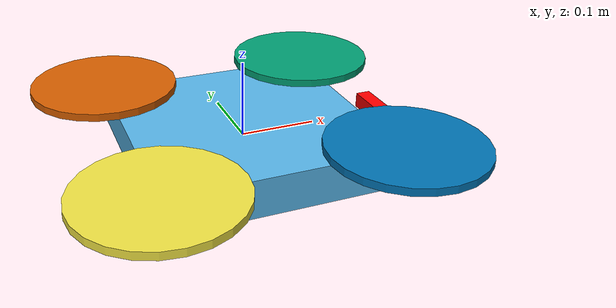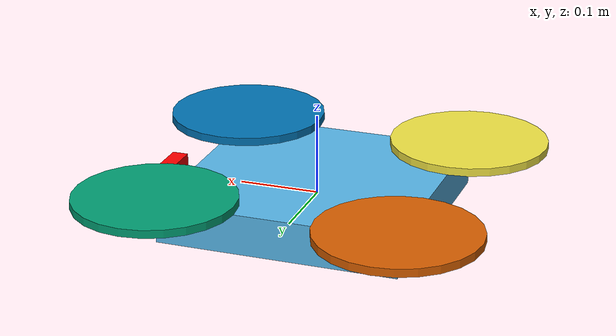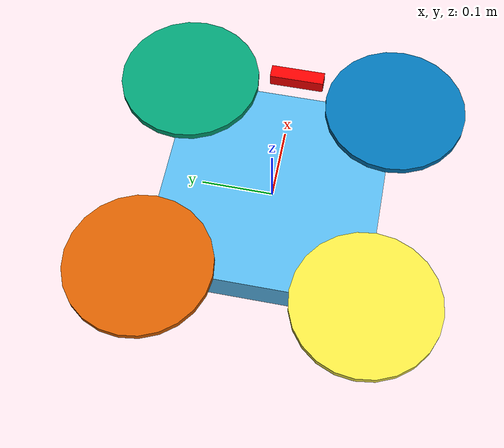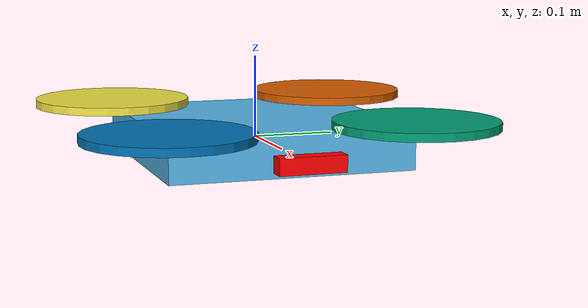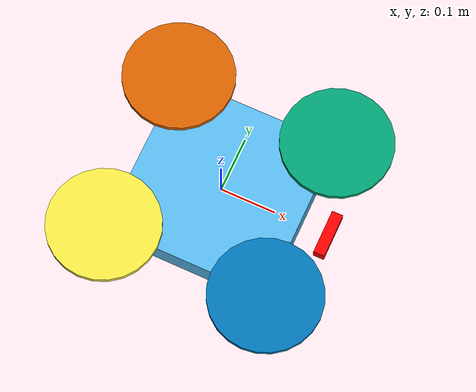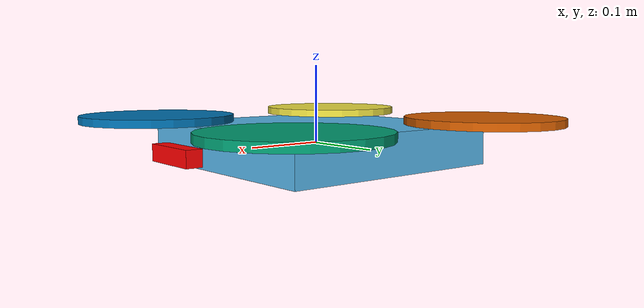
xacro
<?xml version="1.0"?>
<robot xmlns:xacro="http://www.ros.org/wiki/xacro" name="drone">

    <xacro:property name="robot_namespace" value="drone" />

    <xacro:include filename="components/shapes.xacro" />
    <xacro:include filename="components/rotor.xacro" />

    <link name="base_footprint" />
    <joint name="base_joint" type="fixed">
        <parent link="base_footprint" />
        <child link="base_link" />
        <origin xyz="0 0 0" rpy="0 0 0" />
    </joint>

    <link name="base_link">
        <visual>
            <geometry>
                <box size="0.3 0.3 0.05" />
            </geometry>
        </visual>
        <collision>
            <geometry>
                <box size="0.3 0.3 0.05" />
            </geometry>
        </collision>
        <xacro:inertial_box mass="1.0" x="0.3" y="0.3" z="0.05">
            <origin xyz="0 0 0" rpy="0 0 0" />
        </xacro:inertial_box>
    </link>

    <xacro:rotor suffix="0" x="0.15" y="0.15" ccw="-1" />  <!-- Front Left -->
    <xacro:rotor suffix="1" x="-0.15" y="-0.15" ccw="-1" />  <!-- Rear Right -->
    <xacro:rotor suffix="2" x="0.15" y="-0.15" ccw="1" /> <!-- Front Right -->
    <xacro:rotor suffix="3" x="-0.15" y="0.15" ccw="1" /> <!-- Rear Left -->

    <xacro:include filename="sensors.xacro" />

    <gazebo>
        <plugin filename="gz-sim-joint-state-publisher-system"
            name="gz::sim::systems::JointStatePublisher">
            <topic>/${robot_namespace}/joint_states</topic>
        </plugin>

        <plugin
            filename="gz-sim-scene-broadcaster-system"
            name="gz::sim::systems::SceneBroadcaster">
        </plugin>

        <!-- odometry -->
        <plugin
            filename="gz-sim-odometry-publisher-system"
            name="gz::sim::systems::OdometryPublisher">
            <dimensions>3</dimensions>
            <odom_publish_frequency>50</odom_publish_frequency>
            <odom_topic>/${robot_namespace}/odometry</odom_topic>
            <tf_topic>/${robot_namespace}/tf</tf_topic>
            <gaussian_noise>0.01</gaussian_noise>
            <odom_frame>${robot_namespace}/odom</odom_frame>
            <robot_base_frame>${robot_namespace}/base_footprint</robot_base_frame>
        </plugin>

    </gazebo>

</robot>

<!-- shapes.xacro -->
<robot xmlns:xacro="http://ros.org">

    <!-- Αδράνεια για Σφαίρα -->
    <xacro:macro name="inertial_sphere" params="mass radius *origin">
        <inertial>
            <xacro:insert_block name="origin"/>
            <mass value="${mass}" />
            <inertia ixx="${(2/5) * mass * (radius*radius)}" ixy="0.0" ixz="0.0"
                     iyy="${(2/5) * mass * (radius*radius)}" iyz="0.0"
                     izz="${(2/5) * mass * (radius*radius)}" />
        </inertial>
    </xacro:macro>

    <!-- Αδράνεια για Κύλινδρο -->
    <xacro:macro name="inertial_cylinder" params="mass length radius *origin">
        <inertial>
            <xacro:insert_block name="origin"/>
            <mass value="${mass}" />
            <inertia ixx="${(1/12) * mass * (3*radius*radius + length*length)}" ixy="0.0" ixz="0.0"
                     iyy="${(1/12) * mass * (3*radius*radius + length*length)}" iyz="0.0"
                     izz="${(1/2) * mass * (radius*radius)}" />
        </inertial>
    </xacro:macro>

    <!-- Αδράνεια για Κουτί (Box) -->
    <xacro:macro name="inertial_box" params="mass x y z *origin">
        <inertial>
            <xacro:insert_block name="origin"/>
            <mass value="${mass}" />
            <inertia ixx="${(1/12) * mass * (y*y + z*z)}" ixy="0.0" ixz="0.0"
                     iyy="${(1/12) * mass * (x*x + z*z)}" iyz="0.0"
                     izz="${(1/12) * mass * (x*x + y*y)}" />
        </inertial>
    </xacro:macro>

</robot>

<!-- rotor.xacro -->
<robot xmlns:xacro="http://www.ros.org/wiki/xacro">
    <xacro:include filename="shapes.xacro" />

    <!-- Added 'ccw' parameter: use 1 for counter-clockwise, -1 for clockwise -->
    <xacro:macro name="rotor" params="suffix x y ccw">

        <!-- Continuous Joint for spinning -->
        <joint name="rotor_${suffix}_joint" type="continuous">
            <parent link="base_link" />
            <child link="rotor_${suffix}" />
            <origin xyz="${x} ${y} 0.03" rpy="0 0 0" />
            <axis xyz="0 0 1" />
        </joint>

        <!-- Rotor Link Geometry -->
        <link name="rotor_${suffix}">
            <visual>
                <geometry>
                    <cylinder radius="0.1" length="0.01" />
                </geometry>
            </visual>
            <xacro:inertial_cylinder mass="0.02" length="0.01" radius="0.1">
                <origin xyz="0 0 0" rpy="0 0 0" />
            </xacro:inertial_cylinder>
        </link>

        <gazebo>
            <plugin filename="gz-sim-multicopter-motor-model-system"
                name="gz::sim::systems::MulticopterMotorModel">

                <jointName>rotor_${suffix}_joint</jointName>
                <linkName>rotor_${suffix}</linkName>

                <turningDirection>${'ccw' if ccw==1 else 'cw'}</turningDirection>

                <timeConstantUp>0.0125</timeConstantUp>
                <timeConstantDown>0.025</timeConstantDown>

                <maxRotVelocity>1000</maxRotVelocity>

                <motorConstant>1.269e-05</motorConstant>
                <momentConstant>0.016</momentConstant>

                <commandSubTopic>command/motor_speed</commandSubTopic>

                <motorNumber>${suffix}</motorNumber>
                <actuator_number>${suffix}</actuator_number>

                <motorSpeedPubTopic>motor_speed/${suffix}</motorSpeedPubTopic>

                <rotorDragCoefficient>8.06428e-05</rotorDragCoefficient>
                <rollingMomentCoefficient>1e-06</rollingMomentCoefficient>

                <!-- set to 1 for direct rotor velocity simulation (less artificial slowdown) -->
                <rotorVelocitySlowdownSim>1</rotorVelocitySlowdownSim>

                <motorType>velocity</motorType>
            </plugin>
        </gazebo>

    </xacro:macro>
</robot>

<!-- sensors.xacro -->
<robot xmlns:xacro="http://www.ros.org/wiki/xacro">
    <!-- CAMERA -->
    <link name="camera_link">
        <inertial>
            <mass value="0.0" />
            <inertia ixx="0.0001" ixy="0.0" ixz="0.0" iyy="0.0001" iyz="0.0" izz="0.0001" />
        </inertial>
        <visual>
            <geometry>
                <box size="0.02 0.08 0.02" />
            </geometry>
            <material name="red">
                <color rgba="1 0 0 1" />
            </material>
        </visual>
        <collision>
            <geometry>
                <box size="0.02 0.08 0.02" />
            </geometry>
        </collision>
    </link>

    <joint name="camera_joint" type="fixed">
        <parent link="base_link" />
        <child link="camera_link" />
        <origin xyz="0.2 0 0.0" rpy="0 0 0" />
    </joint>

    <gazebo reference="camera_link">
        <!-- Αλλαγή του type σε rgbd_camera -->
        <sensor name="drone_rgbd_camera" type="rgbd_camera">
            <always_on>1</always_on>
            <update_rate>30</update_rate>
            <visualize>true</visualize>
            <topic>/${robot_namespace}/camera/rgbd</topic>

            <camera>
                <optical_frame_id>/${robot_namespace}/camera_rgbd_optical_frame</optical_frame_id>

                <horizontal_fov>1.047</horizontal_fov>
                <image>
                    <width>640</width>
                    <height>480</height>
                    <format>R8G8B8</format>
                </image>
                <clip>
                    <near>0.05</near>
                    <far>10.0</far>
                </clip>
            </camera>
        </sensor>
    </gazebo>

    <link name="camera_rgbd_optical_frame" />
    <joint name="camera_rgbd_optical_frame_joint" type="fixed">
        <parent link="camera_link" />
        <child link="camera_rgbd_optical_frame" />
        <origin xyz="0 0 0" rpy="0 0 0" />
    </joint>

    <!-- IMU SENSOR (gz-sim)   -->
    <link name="imu_link">
        <inertial>
            <mass value="0.0" />
            <inertia ixx="0.0001" ixy="0.0" ixz="0.0" iyy="0.0001" iyz="0.0" izz="0.0001" />
        </inertial>
        <visual>
            <geometry>
                <box size="0.02 0.02 0.02" />
            </geometry>
            <material name="blue">
                <color rgba="0 0 1 1" />
            </material>
        </visual>
        <collision>
            <geometry>
                <box size="0.02 0.02 0.02" />
            </geometry>
        </collision>
    </link>

    <gazebo reference="imu_link">
        <sensor name="imu_sensor" type="imu">
            <always_on>1</always_on>
            <update_rate>200</update_rate>
            <visualize>true</visualize>
            <topic>/${robot_namespace}/imu</topic>

            <plugin filename="gz-sim-imu-system"
                name="gz::sim::systems::Imu">
            </plugin>
        </sensor>
    </gazebo>

    <joint
        name="imu_joint" type="fixed">
        <parent link="base_link" />
        <child link="imu_link" />
    </joint>
    <!-- GPS SENSOR (gz-sim)   -->

    <gazebo>
        <plugin
            filename="gz-sim-sensors-system"
            name="gz::sim::systems::Sensors">
            <render_engine>ogre2</render_engine>
        </plugin>
    </gazebo>
</robot>
